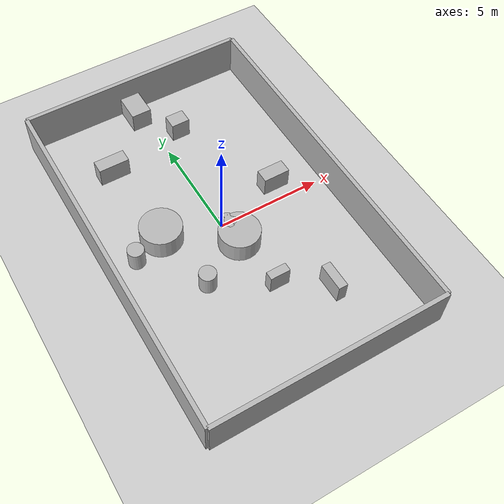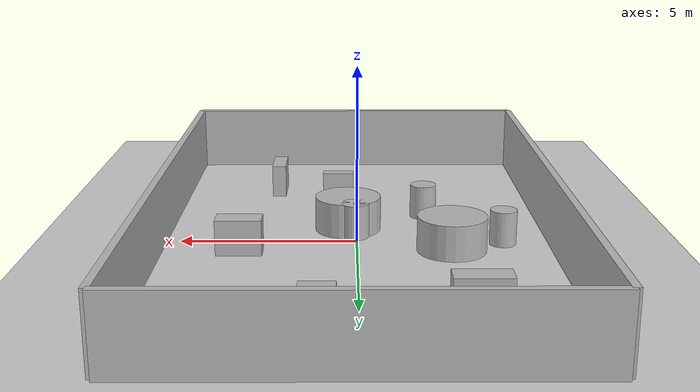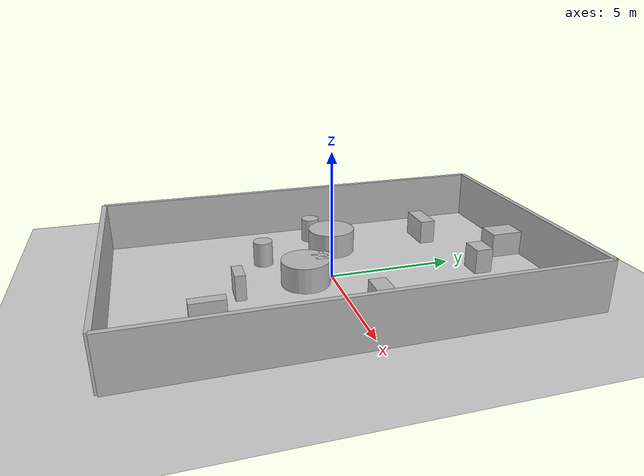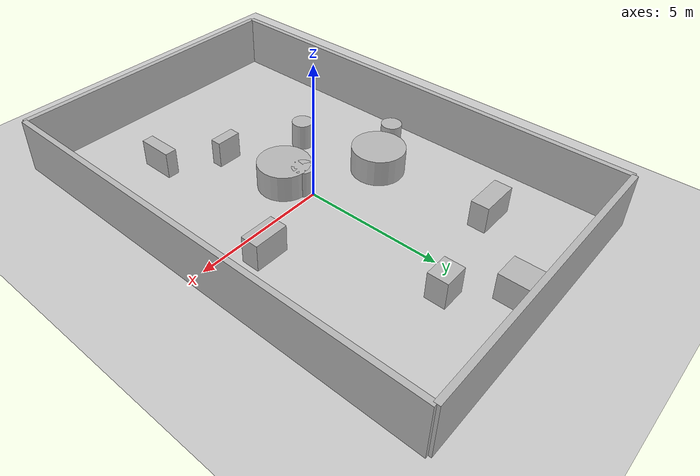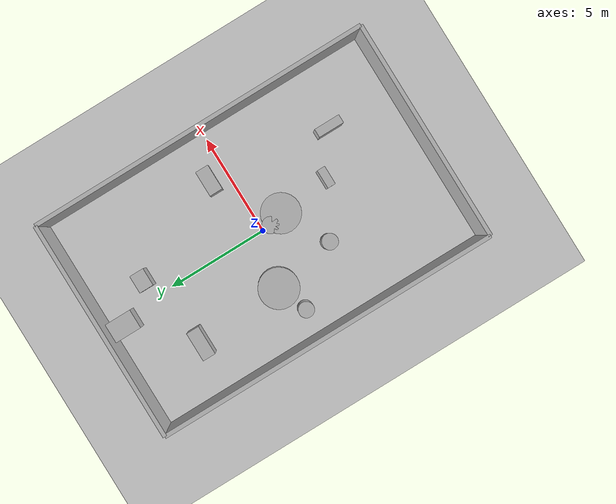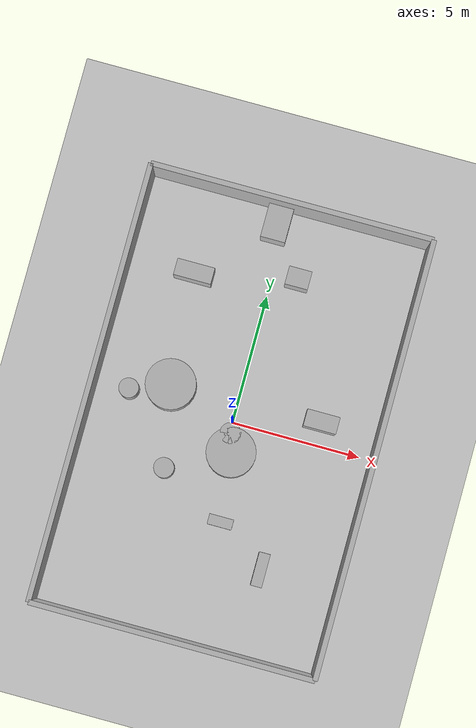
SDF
<?xml version="1.0"?>
<sdf version="1.6">
  <world name="env_66">

    <include><uri>model://ground_plane</uri></include>
    <include><uri>model://sun</uri></include>

    <!-- WALLS -->
    <model name="wall_north"><static>true</static><pose>0 8.459731303723228 1 0 0 0</pose>
      <link name="link"><collision name="collision">
        <geometry><box><size>10.943308991538643 0.2 2</size></box></geometry>
      </collision><visual name="visual">
        <geometry><box><size>10.943308991538643 0.2 2</size></box></geometry>
      </visual></link>
    </model>

    <model name="wall_south"><static>true</static><pose>0 -8.459731303723228 1 0 0 0</pose>
      <link name="link"><collision name="collision">
        <geometry><box><size>10.943308991538643 0.2 2</size></box></geometry>
      </collision><visual name="visual">
        <geometry><box><size>10.943308991538643 0.2 2</size></box></geometry>
      </visual></link>
    </model>

    <model name="wall_east"><static>true</static><pose>5.471654495769322 0 1 0 0 1.57</pose>
      <link name="link"><collision name="collision">
        <geometry><box><size>16.919462607446455 0.2 2</size></box></geometry>
      </collision><visual name="visual">
        <geometry><box><size>16.919462607446455 0.2 2</size></box></geometry>
      </visual></link>
    </model>

    <model name="wall_west"><static>true</static><pose>-5.471654495769322 0 1 0 0 1.57</pose>
      <link name="link"><collision name="collision">
        <geometry><box><size>16.919462607446455 0.2 2</size></box></geometry>
      </collision><visual name="visual">
        <geometry><box><size>16.919462607446455 0.2 2</size></box></geometry>
      </visual></link>
    </model>

    <!-- SENSOR -->

    <model name="lidar_sensor">
      <static>true</static>
      <pose>-3.9515614937579286 -2.205149862175073 0.4 0 0 0</pose>
      <link name="link">
        <sensor name="lidar" type="ray">
          <pose>0 0 0 0 0 0</pose>
          <visualize>true</visualize>
          <always_on>true</always_on>
          <update_rate>10</update_rate>
          <ray>
            <scan><horizontal>
              <samples>180</samples>
              <resolution>1</resolution>
              <min_angle>-3.14159</min_angle>
              <max_angle>3.14159</max_angle>
            </horizontal></scan>
            <range><min>0.15</min><max>20.0</max><resolution>0.01</resolution></range>
          </ray>
          <plugin name="lidar_plugin" filename="liblidar_plugin.so"/>
        </sensor>
      </link>
    </model>

    <!-- OBSTACLES -->

    <model name="obstacle_0">
      <static>true</static>
      <pose>0.5642918345051884 -3.7416214098614224 0.5 0 0 0</pose>
      <link name="link">
        <collision name="collision">
          <geometry><box><size>0.94 0.4 1.0</size></box></geometry>
        </collision>
        <visual name="visual">
          <geometry><box><size>0.94 0.4 1.0</size></box></geometry>
        </visual>
      </link>
    </model>

    <model name="obstacle_1">
      <static>true</static>
      <pose>0.04451273182607274 -0.4348599871062868 0.5 0 0 0</pose>
      <link name="link">
        <collision name="collision">
          <geometry><cylinder><radius>0.4</radius><length>1.0</length></cylinder></geometry>
        </collision>
        <visual name="visual">
          <geometry><cylinder><radius>0.4</radius><length>1.0</length></cylinder></geometry>
        </visual>
      </link>
    </model>

    <model name="obstacle_2">
      <static>true</static>
      <pose>-2.60829321720388 0.7512122765505662 0.5 0 0 0</pose>
      <link name="link">
        <collision name="collision">
          <geometry><cylinder><radius>0.97</radius><length>1.0</length></cylinder></geometry>
        </collision>
        <visual name="visual">
          <geometry><cylinder><radius>0.97</radius><length>1.0</length></cylinder></geometry>
        </visual>
      </link>
    </model>

    <model name="obstacle_3">
      <static>true</static>
      <pose>0.25659278867191304 -1.1239147384277626 0.5 0 0 0</pose>
      <link name="link">
        <collision name="collision">
          <geometry><cylinder><radius>0.95</radius><length>1.0</length></cylinder></geometry>
        </collision>
        <visual name="visual">
          <geometry><cylinder><radius>0.95</radius><length>1.0</length></cylinder></geometry>
        </visual>
      </link>
    </model>

    <model name="obstacle_4">
      <static>true</static>
      <pose>-0.3533584150155873 7.778263491546928 0.5 0 0 0</pose>
      <link name="link">
        <collision name="collision">
          <geometry><box><size>0.96 1.47 1.0</size></box></geometry>
        </collision>
        <visual name="visual">
          <geometry><box><size>0.96 1.47 1.0</size></box></geometry>
        </visual>
      </link>
    </model>

    <model name="obstacle_5">
      <static>true</static>
      <pose>3.239118178438087 0.8878659542819118 0.5 0 0 0</pose>
      <link name="link">
        <collision name="collision">
          <geometry><box><size>1.27 0.66 1.0</size></box></geometry>
        </collision>
        <visual name="visual">
          <geometry><box><size>1.27 0.66 1.0</size></box></geometry>
        </visual>
      </link>
    </model>

    <model name="obstacle_6">
      <static>true</static>
      <pose>-4.092692775727549 0.1984923322557144 0.5 0 0 0</pose>
      <link name="link">
        <collision name="collision">
          <geometry><cylinder><radius>0.38</radius><length>1.0</length></cylinder></geometry>
        </collision>
        <visual name="visual">
          <geometry><cylinder><radius>0.38</radius><length>1.0</length></cylinder></geometry>
        </visual>
      </link>
    </model>

    <model name="obstacle_7">
      <static>true</static>
      <pose>2.481541945589133 -5.074054659727732 0.5 0 0 0</pose>
      <link name="link">
        <collision name="collision">
          <geometry><box><size>0.43 1.29 1.0</size></box></geometry>
        </collision>
        <visual name="visual">
          <geometry><box><size>0.43 1.29 1.0</size></box></geometry>
        </visual>
      </link>
    </model>

    <model name="obstacle_8">
      <static>true</static>
      <pose>-2.888721905031954 5.09917215874737 0.5 0 0 0</pose>
      <link name="link">
        <collision name="collision">
          <geometry><box><size>1.46 0.64 1.0</size></box></geometry>
        </collision>
        <visual name="visual">
          <geometry><box><size>1.46 0.64 1.0</size></box></geometry>
        </visual>
      </link>
    </model>

    <model name="obstacle_9">
      <static>true</static>
      <pose>-2.0201792721857785 -2.3461934863516154 0.5 0 0 0</pose>
      <link name="link">
        <collision name="collision">
          <geometry><cylinder><radius>0.39</radius><length>1.0</length></cylinder></geometry>
        </collision>
        <visual name="visual">
          <geometry><cylinder><radius>0.39</radius><length>1.0</length></cylinder></geometry>
        </visual>
      </link>
    </model>

    <model name="obstacle_10">
      <static>true</static>
      <pose>0.9706095443006708 5.896827147238895 0.5 0 0 0</pose>
      <link name="link">
        <collision name="collision">
          <geometry><box><size>0.89 0.71 1.0</size></box></geometry>
        </collision>
        <visual name="visual">
          <geometry><box><size>0.89 0.71 1.0</size></box></geometry>
        </visual>
      </link>
    </model>

  </world>
</sdf>
